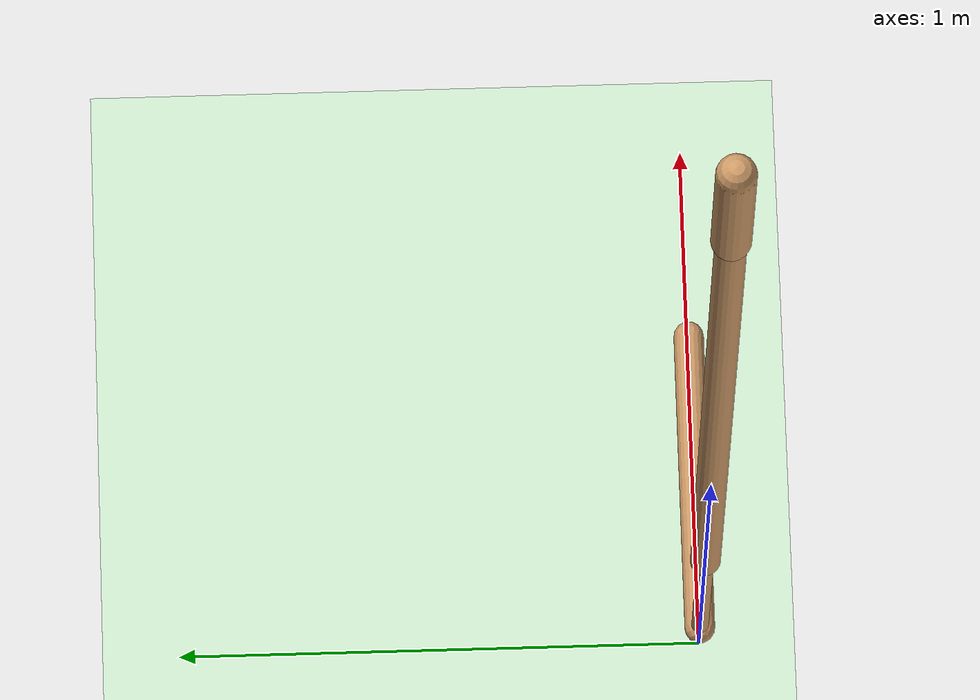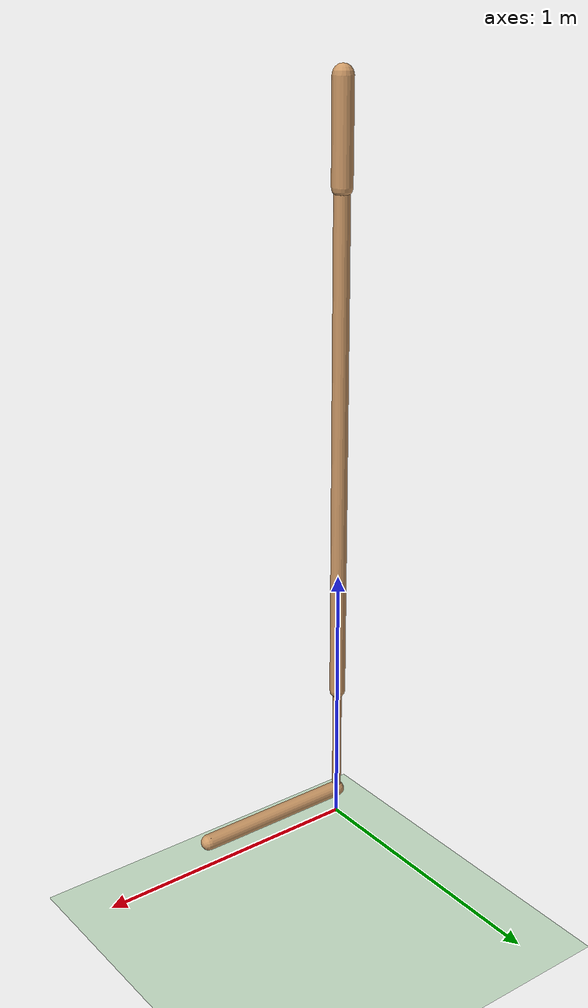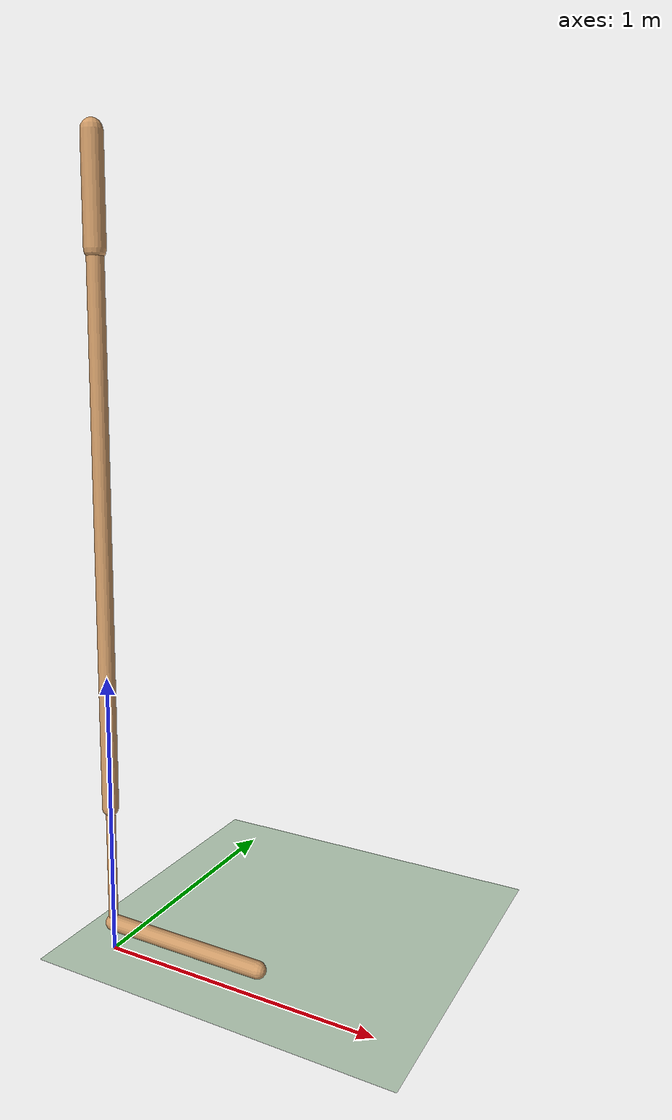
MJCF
<mujoco model="walker2d">
  <compiler angle="degree" inertiafromgeom="true" />
  <default>
    <joint armature="0.01" damping=".1" limited="true" />
    <geom conaffinity="0" condim="3" contype="1" density="1000" friction=".7 .1 .1" rgba="0.8 0.6 .4 1" />
  </default>
  <option integrator="RK4" timestep="0.002" />
  <worldbody>
    <light cutoff="100" diffuse="1 1 1" dir="-0 0 -1.3" directional="true" exponent="1" pos="0 0 1.3" specular=".1 .1 .1" />
    <geom conaffinity="1" condim="3" name="floor" pos="0 0 0" rgba="0.8 0.9 0.8 1" size="40 40 40" type="plane" material="MatPlane" />
    <body name="torso" pos="0 0 2.5714622497558595">
      <camera name="track" mode="trackcom" pos="0 -5 -1.25" xyaxes="1 0 0 0 0 1" />
      <joint armature="0" axis="1 0 0" damping="0" limited="false" name="rootx" pos="0 0 -1.25" stiffness="0" type="slide" />
      <joint armature="0" axis="0 0 1" damping="0" limited="false" name="rootz" pos="0 0 -1.25" ref="1.25" stiffness="0" type="slide" />
      <joint armature="0" axis="0 1 0" damping="0" limited="false" name="rooty" pos="0 0 0" stiffness="0" type="hinge" />
      <geom friction="0.9" name="torso_geom" size="0.03649498149752617 0.1754106879234314" type="capsule" />
      <body name="thigh" pos="0 0 -0.1754106879234314">
        <joint axis="0 -1 0" name="thigh_joint" pos="0 0 0" range="-150 0" type="hinge" />
        <site name="torso_thigh_site" pos="0 0 0" size="0.01" type="sphere" rgba="1 0 0 0.5" />
        <geom friction="0.9" pos="0 0 -0.9315407276153564" name="thigh_geom" size="0.028863459825515747 0.9315407276153564" type="capsule" />
        <body name="leg" pos="0 0 -2.0795665085315704">
          <joint axis="0 -1 0" name="leg_joint" pos="0 0 0.21648505330085754" range="-150 0" type="hinge" />
          <site name="thigh_leg_site" pos="0 0 0.25" size="0.01" type="sphere" rgba="1 0 0 0.5" />
          <geom friction="0.9" name="leg_geom" size="0.01651082932949066 0.21648505330085754" type="capsule" />
          <body name="foot" pos="0.5899567604064941 0 -0.3164850533008575">
            <joint axis="0 -1 0" name="foot_joint" pos="-0.5899567604064941 0 0.1" range="-45 45" type="hinge" />
            <site name="leg_foot_site" pos="-0.2 0 0.1" size="0.01" type="sphere" rgba="1 0 0 0.5" />
            <geom friction="0.9" pos="-0.29497838020324707 0 0.1" quat="0.70710678118654757 0 -0.70710678118654746 0" name="foot_geom" size="0.028958426788449287 0.29497838020324707" type="capsule" />
          </body>
        </body>
      </body>

      <body name="thigh_left" pos="0 0 -0.1754106879234314">
        <joint axis="0 -1 0" name="thigh_left_joint" pos="0 0 0" range="-150 0" type="hinge" />
        <site name="torso_thigh_left_site" pos="0 0 0" size="0.01" type="sphere" rgba="1 0 0 0.5" />
        <geom friction="0.9" name="thigh_left_geom" rgba=".7 .3 .6 1" size="0.028863459825515747 0.9315407276153564" pos="0 0 -0.9315407276153564" type="capsule" />
        <body name="leg_left" pos="0 0 -2.0795665085315704">
          <joint axis="0 -1 0" name="leg_left_joint" pos="0 0 0.21648505330085754" range="-150 0" type="hinge" />
          <site name="thigh_leg_left_site" pos="0 0 0.25" size="0.01" type="sphere" rgba="1 0 0 0.5" />
          <geom friction="0.9" name="leg_left_geom" rgba=".7 .3 .6 1" size="0.01651082932949066 0.21648505330085754" type="capsule" />
          <body name="foot_left" pos="0.5899567604064941 0 -0.3164850533008575">
            <joint axis="0 -1 0" name="foot_left_joint" pos="-0.5899567604064941 0 0.1" range="-45 45" type="hinge" />
            <site name="leg_foot_left_site" pos="-0.2 0 0.1" size="0.01" type="sphere" rgba="1 0 0 0.5" />
            <geom friction="1.9" name="foot_left_geom" rgba=".7 .3 .6 1" size="0.028958426788449287 0.29497838020324707" pos="-0.29497838020324707 0 0.1" type="capsule" quat="0.70710678118654757 0 -0.70710678118654746 0" />
          </body>
        </body>
      </body>
    </body>
  </worldbody>
  <actuator>

    <motor ctrllimited="true" ctrlrange="-1.0 1.0" gear="137.96727827559934" joint="thigh_joint" />
    <motor ctrllimited="true" ctrlrange="-1.0 1.0" gear="14.753861488096053" joint="leg_joint" />
    <motor ctrllimited="true" ctrlrange="-1.0 1.0" gear="68.71279501458393" joint="foot_joint" />
    <motor ctrllimited="true" ctrlrange="-1.0 1.0" gear="137.96727827559934" joint="thigh_left_joint" />
    <motor ctrllimited="true" ctrlrange="-1.0 1.0" gear="14.753861488096053" joint="leg_left_joint" />
    <motor ctrllimited="true" ctrlrange="-1.0 1.0" gear="68.71279501458393" joint="foot_left_joint" />

  </actuator>
    <asset>
        <texture type="skybox" builtin="gradient" rgb1=".4 .5 .6" rgb2="0 0 0" width="100" height="100" />
        <texture builtin="flat" height="1278" mark="cross" markrgb="1 1 1" name="texgeom" random="0.01" rgb1="0.8 0.6 0.4" rgb2="0.8 0.6 0.4" type="cube" width="127" />
        <texture builtin="checker" height="100" name="texplane" rgb1="0 0 0" rgb2="0.8 0.8 0.8" type="2d" width="100" />
        <material name="MatPlane" reflectance="0.5" shininess="1" specular="1" texrepeat="60 60" texture="texplane" />
        <material name="geom" texture="texgeom" texuniform="true" />
    </asset>

  <sensor>
    <force site="torso_thigh_site" name="torso_thigh_sensor" />
    <force site="thigh_leg_site" name="thigh_leg_sensor" />
    <force site="leg_foot_site" name="leg_foot_sensor" />
    <force site="torso_thigh_left_site" name="torso_thigh_left_sensor" />
    <force site="thigh_leg_left_site" name="thigh_leg_left_sensor" />
    <force site="leg_foot_left_site" name="leg_foot_left_sensor" />
  </sensor>
</mujoco>
